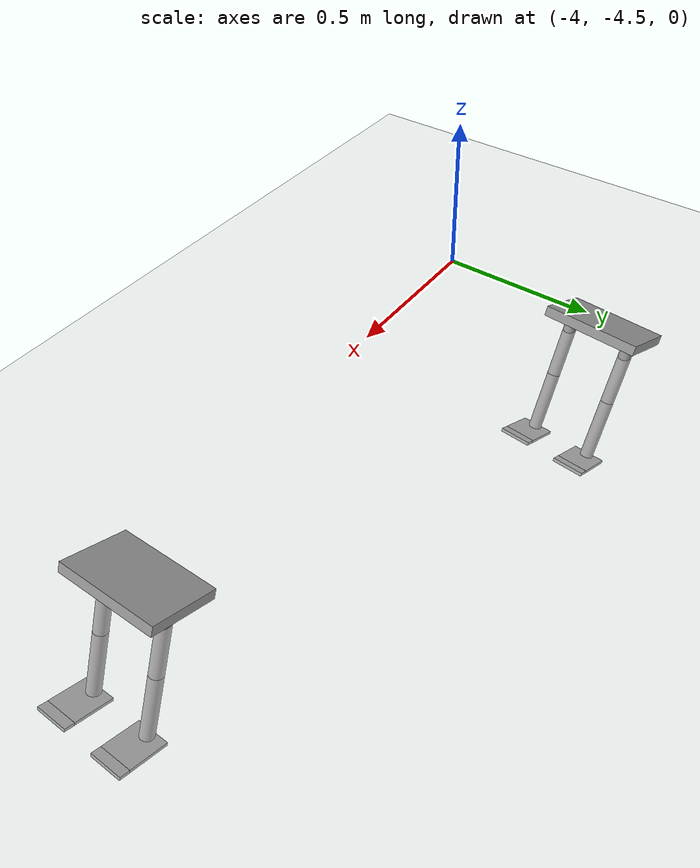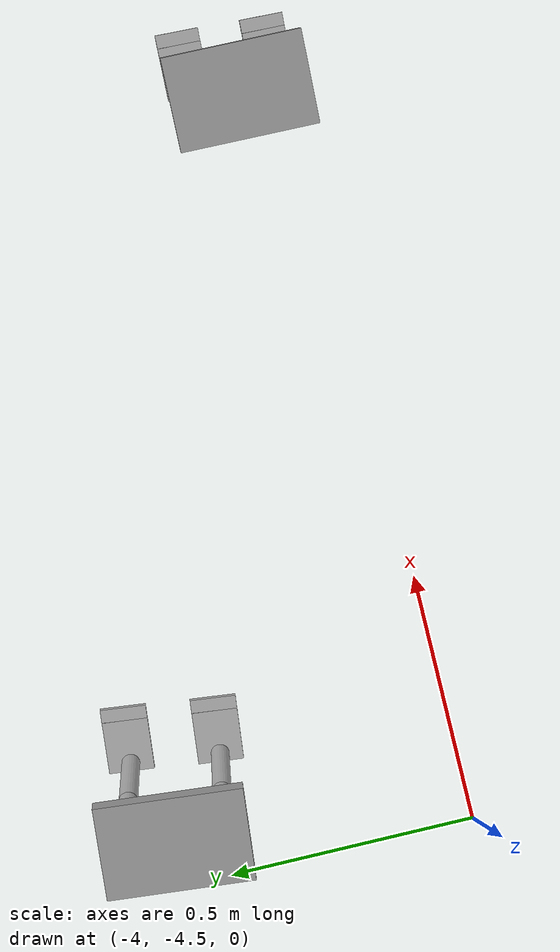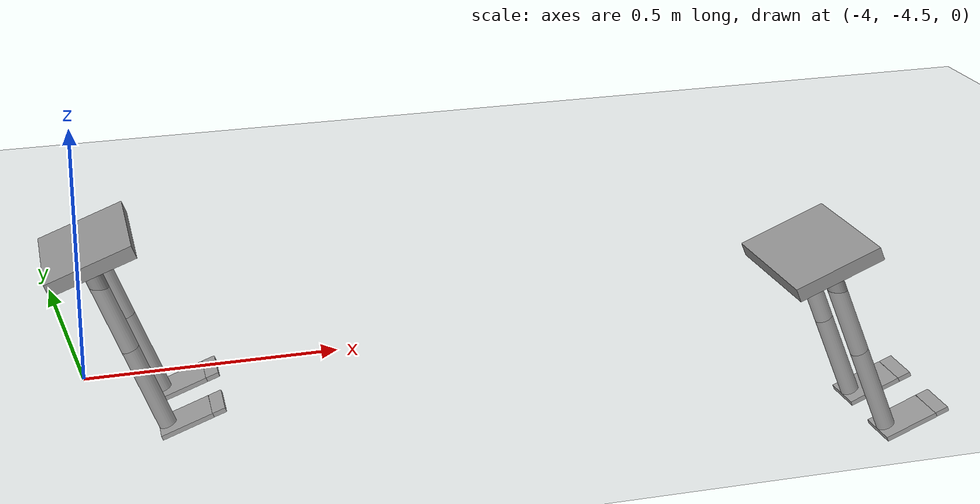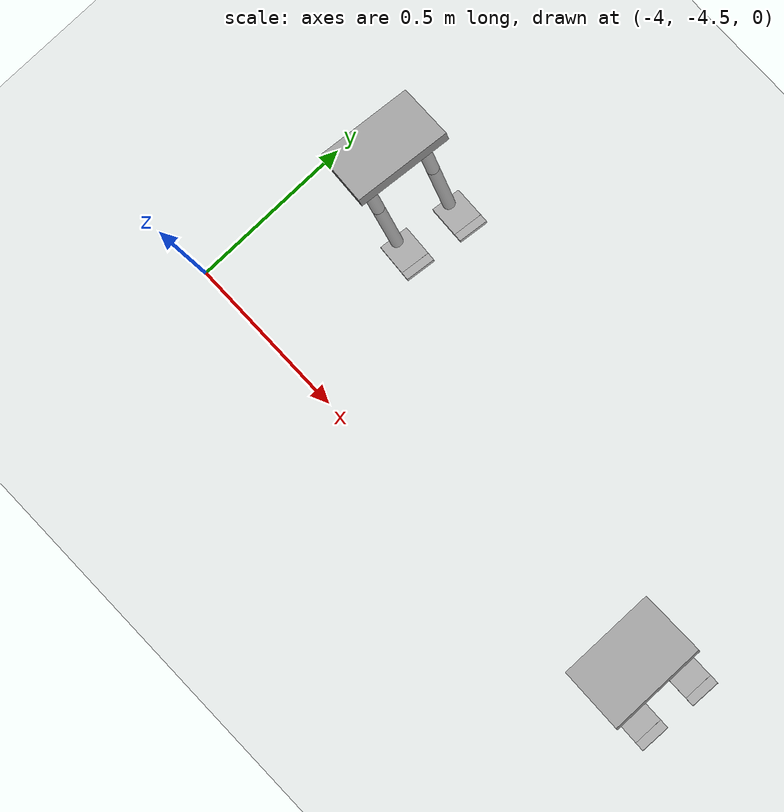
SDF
<sdf version="1.6">
 <world name="default">
  <model name="ground_plane">
   <static>1</static>
   <link name="link">
    <collision name="collision">
     <geometry><plane><normal>0 0 1</normal><size>100 100</size></plane></geometry>
     <surface><friction><ode><mu>100</mu><mu2>50</mu2></ode></friction></surface>
    </collision>
    <visual name="visual">
     <cast_shadows>0</cast_shadows>
     <geometry><plane><normal>0 0 1</normal><size>100 100</size></plane></geometry>
     <material>
      <script><uri>file://media/materials/scripts/gazebo.material</uri><name>Gazebo/Grey</name></script>
     </material>
    </visual>
   </link>
  </model>
  <model name="humanoid">
   <link name="link_0">
    <inertial>
     <mass>1</mass>
     <inertia>
      <ixx>0.166667</ixx>
      <ixy>0</ixy>
      <ixz>0</ixz>
      <iyy>0.166667</iyy>
      <iyz>0</iyz>
      <izz>0.166667</izz>
     </inertia>
    </inertial>
    <pose>0.02879 -0.034222 0.3501 0 -0 0</pose>
    <visual name="visual">
     <geometry><box><size>0.2 0.3 0.03</size></box></geometry>
     <material>
      <lighting>1</lighting>
      <script><uri>file://media/materials/scripts/gazebo.material</uri><name>Gazebo/Grey</name></script>
      <shader type="pixel"><normal_map>__default__</normal_map></shader>
      <ambient>0.3 0.3 0.3 1</ambient>
      <diffuse>0.7 0.7 0.7 1</diffuse>
      <specular>0.01 0.01 0.01 1</specular>
      <emissive>0 0 0 1</emissive>
     </material>
    </visual>
    <collision name="collision">
     <geometry><box><size>0.2 0.3 0.03</size></box></geometry>
     <surface>
      <friction>
       <ode><mu>1</mu><mu2>1</mu2><fdir1>0 0 0</fdir1><slip1>0</slip1><slip2>0</slip2></ode>
       <torsional>
        <coefficient>1</coefficient>
        <patch_radius>0</patch_radius>
        <surface_radius>0</surface_radius>
        <use_patch_radius>1</use_patch_radius>
        <ode><slip>0</slip></ode>
       </torsional>
      </friction>
      <bounce><restitution_coefficient>0</restitution_coefficient><threshold>1e+06</threshold></bounce>
      <contact>
       <collide_without_contact>0</collide_without_contact>
       <collide_without_contact_bitmask>1</collide_without_contact_bitmask>
       <collide_bitmask>1</collide_bitmask>
       <ode>
        <soft_cfm>0</soft_cfm>
        <soft_erp>0.2</soft_erp>
        <kp>1e+13</kp>
        <kd>1</kd>
        <max_vel>0.01</max_vel>
        <min_depth>0</min_depth>
       </ode>
       <bullet>
        <split_impulse>1</split_impulse>
        <split_impulse_penetration_threshold>-0.01</split_impulse_penetration_threshold>
        <soft_cfm>0</soft_cfm>
        <soft_erp>0.2</soft_erp>
        <kp>1e+13</kp>
        <kd>1</kd>
       </bullet>
      </contact>
     </surface>
    </collision>
   </link>
   <model name="full-leg">
    <link name="link_0">
     <inertial>
      <mass>0.0847963</mass>
      <inertia>
       <ixx>0.00010908</ixx>
       <ixy>0</ixy>
       <ixz>0</ixz>
       <iyy>7.137e-05</iyy>
       <iyz>0</iyz>
       <izz>0.00017903</izz>
      </inertia>
     </inertial>
     <pose>0.065943 0.108898 0.091666 0 -0 0</pose>
     <visual name="visual">
      <geometry><box><size>0.1 0.12 0.01</size></box></geometry>
      <material>
       <lighting>1</lighting>
       <script><uri>file://media/materials/scripts/gazebo.material</uri><name>Gazebo/Grey</name></script>
       <shader type="pixel"><normal_map>__default__</normal_map></shader>
       <ambient>0.3 0.3 0.3 1</ambient>
       <diffuse>0.7 0.7 0.7 1</diffuse>
       <specular>0.01 0.01 0.01 1</specular>
       <emissive>0 0 0 1</emissive>
      </material>
     </visual>
     <collision name="collision">
      <geometry><box><size>0.1 0.12 0.01</size></box></geometry>
      <surface>
       <friction>
        <ode><mu>1</mu><mu2>1</mu2><fdir1>0 0 0</fdir1><slip1>0</slip1><slip2>0</slip2></ode>
        <torsional>
         <coefficient>1</coefficient>
         <patch_radius>0</patch_radius>
         <surface_radius>0</surface_radius>
         <use_patch_radius>1</use_patch_radius>
         <ode><slip>0</slip></ode>
        </torsional>
       </friction>
       <bounce><restitution_coefficient>0</restitution_coefficient><threshold>1e+06</threshold></bounce>
       <contact>
        <collide_without_contact>0</collide_without_contact>
        <collide_without_contact_bitmask>1</collide_without_contact_bitmask>
        <collide_bitmask>1</collide_bitmask>
        <ode>
         <soft_cfm>0</soft_cfm>
         <soft_erp>0.2</soft_erp>
         <kp>1e+13</kp>
         <kd>1</kd>
         <max_vel>0.01</max_vel>
         <min_depth>0</min_depth>
        </ode>
        <bullet>
         <split_impulse>1</split_impulse>
         <split_impulse_penetration_threshold>-0.01</split_impulse_penetration_threshold>
         <soft_cfm>0</soft_cfm>
         <soft_erp>0.2</soft_erp>
         <kp>1e+13</kp>
         <kd>1</kd>
        </bullet>
       </contact>
      </surface>
     </collision>
    </link>
    <link name="link_0_clone">
     <inertial>
      <mass>0.0847963</mass>
      <inertia>
       <ixx>0.00010908</ixx>
       <ixy>0</ixy>
       <ixz>0</ixz>
       <iyy>7.137e-05</iyy>
       <iyz>0</iyz>
       <izz>0.00017903</izz>
      </inertia>
     </inertial>
     <pose>0.065943 0.183898 0.091666 0 0 -0.01</pose>
     <visual name="visual">
      <geometry><box><size>0.1 0.03 0.01</size></box></geometry>
      <material>
       <lighting>1</lighting>
       <script><uri>file://media/materials/scripts/gazebo.material</uri><name>Gazebo/Grey</name></script>
       <shader type="pixel"><normal_map>__default__</normal_map></shader>
       <ambient>0.3 0.3 0.3 1</ambient>
       <diffuse>0.7 0.7 0.7 1</diffuse>
       <specular>0.01 0.01 0.01 1</specular>
       <emissive>0 0 0 1</emissive>
      </material>
     </visual>
     <collision name="collision">
      <geometry><box><size>0.1 0.03 0.01</size></box></geometry>
      <surface>
       <friction>
        <ode><mu>1</mu><mu2>1</mu2><fdir1>0 0 0</fdir1><slip1>0</slip1><slip2>0</slip2></ode>
        <torsional>
         <coefficient>1</coefficient>
         <patch_radius>0</patch_radius>
         <surface_radius>0</surface_radius>
         <use_patch_radius>1</use_patch_radius>
         <ode><slip>0</slip></ode>
        </torsional>
       </friction>
       <bounce><restitution_coefficient>0</restitution_coefficient><threshold>1e+06</threshold></bounce>
       <contact>
        <collide_without_contact>0</collide_without_contact>
        <collide_without_contact_bitmask>1</collide_without_contact_bitmask>
        <collide_bitmask>1</collide_bitmask>
        <ode>
         <soft_cfm>0</soft_cfm>
         <soft_erp>0.2</soft_erp>
         <kp>1e+13</kp>
         <kd>1</kd>
         <max_vel>0.01</max_vel>
         <min_depth>0</min_depth>
        </ode>
        <bullet>
         <split_impulse>1</split_impulse>
         <split_impulse_penetration_threshold>-0.01</split_impulse_penetration_threshold>
         <soft_cfm>0</soft_cfm>
         <soft_erp>0.2</soft_erp>
         <kp>1e+13</kp>
         <kd>1</kd>
        </bullet>
       </contact>
      </surface>
     </collision>
    </link>
    <link name="link_1">
     <inertial>
      <mass>1</mass>
      <inertia><ixx>0.145833</ixx><ixy>0</ixy><ixz>0</ixz><iyy>0.145833</iyy><iyz>0</iyz><izz>0.125</izz></inertia>
     </inertial>
     <pose>0.065943 0.068898 0.191666 0 -0 0</pose>
     <visual name="visual">
      <geometry><cylinder><radius>0.02</radius><length>0.2</length></cylinder></geometry>
      <material>
       <lighting>1</lighting>
       <script><uri>file://media/materials/scripts/gazebo.material</uri><name>Gazebo/Grey</name></script>
       <shader type="pixel"><normal_map>__default__</normal_map></shader>
       <ambient>0.3 0.3 0.3 1</ambient>
       <diffuse>0.7 0.7 0.7 1</diffuse>
       <specular>0.01 0.01 0.01 1</specular>
       <emissive>0 0 0 1</emissive>
      </material>
     </visual>
     <collision name="collision">
      <geometry><cylinder><radius>0.02</radius><length>0.2</length></cylinder></geometry>
      <surface>
       <friction>
        <ode><mu>1</mu><mu2>1</mu2><fdir1>0 0 0</fdir1><slip1>0</slip1><slip2>0</slip2></ode>
        <torsional>
         <coefficient>1</coefficient>
         <patch_radius>0</patch_radius>
         <surface_radius>0</surface_radius>
         <use_patch_radius>1</use_patch_radius>
         <ode><slip>0</slip></ode>
        </torsional>
       </friction>
       <bounce><restitution_coefficient>0</restitution_coefficient><threshold>1e+06</threshold></bounce>
       <contact>
        <collide_without_contact>0</collide_without_contact>
        <collide_without_contact_bitmask>1</collide_without_contact_bitmask>
        <collide_bitmask>1</collide_bitmask>
        <ode>
         <soft_cfm>0</soft_cfm>
         <soft_erp>0.2</soft_erp>
         <kp>1e+13</kp>
         <kd>1</kd>
         <max_vel>0.01</max_vel>
         <min_depth>0</min_depth>
        </ode>
        <bullet>
         <split_impulse>1</split_impulse>
         <split_impulse_penetration_threshold>-0.01</split_impulse_penetration_threshold>
         <soft_cfm>0</soft_cfm>
         <soft_erp>0.2</soft_erp>
         <kp>1e+13</kp>
         <kd>1</kd>
        </bullet>
       </contact>
      </surface>
     </collision>
    </link>
    <link name="link_1_clone">
     <inertial>
      <mass>1</mass>
      <inertia><ixx>0.145833</ixx><ixy>0</ixy><ixz>0</ixz><iyy>0.145833</iyy><iyz>0</iyz><izz>0.125</izz></inertia>
     </inertial>
     <pose>0.065943 0.068898 0.391666 0 -0 0</pose>
     <visual name="visual">
      <geometry><cylinder><radius>0.02</radius><length>0.2</length></cylinder></geometry>
      <material>
       <lighting>1</lighting>
       <script><uri>file://media/materials/scripts/gazebo.material</uri><name>Gazebo/Grey</name></script>
       <shader type="pixel"><normal_map>__default__</normal_map></shader>
       <ambient>0.3 0.3 0.3 1</ambient>
       <diffuse>0.7 0.7 0.7 1</diffuse>
       <specular>0.01 0.01 0.01 1</specular>
       <emissive>0 0 0 1</emissive>
      </material>
     </visual>
     <collision name="collision">
      <geometry><cylinder><radius>0.02</radius><length>0.2</length></cylinder></geometry>
      <surface>
       <friction>
        <ode><mu>1</mu><mu2>1</mu2><fdir1>0 0 0</fdir1><slip1>0</slip1><slip2>0</slip2></ode>
        <torsional>
         <coefficient>1</coefficient>
         <patch_radius>0</patch_radius>
         <surface_radius>0</surface_radius>
         <use_patch_radius>1</use_patch_radius>
         <ode><slip>0</slip></ode>
        </torsional>
       </friction>
       <bounce><restitution_coefficient>0</restitution_coefficient><threshold>1e+06</threshold></bounce>
       <contact>
        <collide_without_contact>0</collide_without_contact>
        <collide_without_contact_bitmask>1</collide_without_contact_bitmask>
        <collide_bitmask>1</collide_bitmask>
        <ode>
         <soft_cfm>0</soft_cfm>
         <soft_erp>0.2</soft_erp>
         <kp>1e+13</kp>
         <kd>1</kd>
         <max_vel>0.01</max_vel>
         <min_depth>0</min_depth>
        </ode>
        <bullet>
         <split_impulse>1</split_impulse>
         <split_impulse_penetration_threshold>-0.01</split_impulse_penetration_threshold>
         <soft_cfm>0</soft_cfm>
         <soft_erp>0.2</soft_erp>
         <kp>1e+13</kp>
         <kd>1</kd>
        </bullet>
       </contact>
      </surface>
     </collision>
    </link>
    <joint name="link_0_JOINT_0" type="revolute">
     <parent>link_0</parent>
     <child>link_0_clone</child>
     <pose>0 -0.015 0 0 -0 0</pose>
     <axis>
      <xyz>1 0 0</xyz>
      <limit>
       <lower>-1.79769e+308</lower>
       <upper>1.79769e+308</upper>
       <effort>-1</effort>
       <velocity>-1</velocity>
      </limit>
      <dynamics>
       <spring_reference>0</spring_reference>
       <spring_stiffness>0</spring_stiffness>
       <damping>0</damping>
      </dynamics>
      <use_parent_model_frame>0</use_parent_model_frame>
     </axis>
     <physics>
      <ode><limit><cfm>0</cfm><erp>0.2</erp></limit><suspension><cfm>0</cfm><erp>0.2</erp></suspension></ode>
     </physics>
    </joint>
    <joint name="link_0_JOINT_2" type="revolute">
     <parent>link_0</parent>
     <child>link_1</child>
     <pose>0 0 -0.1 0 -0 0</pose>
     <axis>
      <xyz>1 0 0</xyz>
      <limit>
       <lower>-1.79769e+308</lower>
       <upper>1.79769e+308</upper>
       <effort>-1</effort>
       <velocity>-1</velocity>
      </limit>
      <dynamics>
       <spring_reference>0</spring_reference>
       <spring_stiffness>0</spring_stiffness>
       <damping>0</damping>
      </dynamics>
      <use_parent_model_frame>0</use_parent_model_frame>
     </axis>
     <physics>
      <ode><limit><cfm>0</cfm><erp>0.2</erp></limit><suspension><cfm>0</cfm><erp>0.2</erp></suspension></ode>
     </physics>
    </joint>
    <joint name="link_1_JOINT_3" type="revolute">
     <parent>link_1</parent>
     <child>link_1_clone</child>
     <pose>0 0 -0.1 0 -0 0</pose>
     <axis>
      <xyz>1 0 0</xyz>
      <limit>
       <lower>-1.79769e+308</lower>
       <upper>1.79769e+308</upper>
       <effort>-1</effort>
       <velocity>-1</velocity>
      </limit>
      <dynamics>
       <spring_reference>0</spring_reference>
       <spring_stiffness>0</spring_stiffness>
       <damping>0</damping>
      </dynamics>
      <use_parent_model_frame>0</use_parent_model_frame>
     </axis>
     <physics>
      <ode><limit><cfm>0</cfm><erp>0.2</erp></limit><suspension><cfm>0</cfm><erp>0.2</erp></suspension></ode>
     </physics>
    </joint>
    <static>0</static>
    <pose>-0.042531 -0.066167 -0.154901 0 0 -1.57989</pose>
   </model>
   <model name="full-leg_clone">
    <link name="link_0">
     <inertial>
      <mass>0.0847963</mass>
      <inertia>
       <ixx>0.00010908</ixx>
       <ixy>0</ixy>
       <ixz>0</ixz>
       <iyy>7.137e-05</iyy>
       <iyz>0</iyz>
       <izz>0.00017903</izz>
      </inertia>
     </inertial>
     <pose>0.065943 0.108898 0.091666 0 -0 0</pose>
     <visual name="visual">
      <geometry><box><size>0.1 0.12 0.01</size></box></geometry>
      <material>
       <lighting>1</lighting>
       <script><uri>file://media/materials/scripts/gazebo.material</uri><name>Gazebo/Grey</name></script>
       <shader type="pixel"><normal_map>__default__</normal_map></shader>
       <ambient>0.3 0.3 0.3 1</ambient>
       <diffuse>0.7 0.7 0.7 1</diffuse>
       <specular>0.01 0.01 0.01 1</specular>
       <emissive>0 0 0 1</emissive>
      </material>
     </visual>
     <collision name="collision">
      <geometry><box><size>0.1 0.12 0.01</size></box></geometry>
      <surface>
       <friction>
        <ode><mu>1</mu><mu2>1</mu2><fdir1>0 0 0</fdir1><slip1>0</slip1><slip2>0</slip2></ode>
        <torsional>
         <coefficient>1</coefficient>
         <patch_radius>0</patch_radius>
         <surface_radius>0</surface_radius>
         <use_patch_radius>1</use_patch_radius>
         <ode><slip>0</slip></ode>
        </torsional>
       </friction>
       <bounce><restitution_coefficient>0</restitution_coefficient><threshold>1e+06</threshold></bounce>
       <contact>
        <collide_without_contact>0</collide_without_contact>
        <collide_without_contact_bitmask>1</collide_without_contact_bitmask>
        <collide_bitmask>1</collide_bitmask>
        <ode>
         <soft_cfm>0</soft_cfm>
         <soft_erp>0.2</soft_erp>
         <kp>1e+13</kp>
         <kd>1</kd>
         <max_vel>0.01</max_vel>
         <min_depth>0</min_depth>
        </ode>
        <bullet>
         <split_impulse>1</split_impulse>
         <split_impulse_penetration_threshold>-0.01</split_impulse_penetration_threshold>
         <soft_cfm>0</soft_cfm>
         <soft_erp>0.2</soft_erp>
         <kp>1e+13</kp>
         <kd>1</kd>
        </bullet>
       </contact>
      </surface>
     </collision>
    </link>
    <link name="link_0_clone">
     <inertial>
      <mass>0.0847963</mass>
      <inertia>
       <ixx>0.00010908</ixx>
       <ixy>0</ixy>
       <ixz>0</ixz>
       <iyy>7.137e-05</iyy>
       <iyz>0</iyz>
       <izz>0.00017903</izz>
      </inertia>
     </inertial>
     <pose>0.065943 0.183898 0.091666 0 0 -0.01</pose>
     <visual name="visual">
      <geometry><box><size>0.1 0.03 0.01</size></box></geometry>
      <material>
       <lighting>1</lighting>
       <script><uri>file://media/materials/scripts/gazebo.material</uri><name>Gazebo/Grey</name></script>
       <shader type="pixel"><normal_map>__default__</normal_map></shader>
       <ambient>0.3 0.3 0.3 1</ambient>
       <diffuse>0.7 0.7 0.7 1</diffuse>
       <specular>0.01 0.01 0.01 1</specular>
       <emissive>0 0 0 1</emissive>
      </material>
     </visual>
     <collision name="collision">
      <geometry><box><size>0.1 0.03 0.01</size></box></geometry>
      <surface>
       <friction>
        <ode><mu>1</mu><mu2>1</mu2><fdir1>0 0 0</fdir1><slip1>0</slip1><slip2>0</slip2></ode>
        <torsional>
         <coefficient>1</coefficient>
         <patch_radius>0</patch_radius>
         <surface_radius>0</surface_radius>
         <use_patch_radius>1</use_patch_radius>
         <ode><slip>0</slip></ode>
        </torsional>
       </friction>
       <bounce><restitution_coefficient>0</restitution_coefficient><threshold>1e+06</threshold></bounce>
       <contact>
        <collide_without_contact>0</collide_without_contact>
        <collide_without_contact_bitmask>1</collide_without_contact_bitmask>
        <collide_bitmask>1</collide_bitmask>
        <ode>
         <soft_cfm>0</soft_cfm>
         <soft_erp>0.2</soft_erp>
         <kp>1e+13</kp>
         <kd>1</kd>
         <max_vel>0.01</max_vel>
         <min_depth>0</min_depth>
        </ode>
        <bullet>
         <split_impulse>1</split_impulse>
         <split_impulse_penetration_threshold>-0.01</split_impulse_penetration_threshold>
         <soft_cfm>0</soft_cfm>
         <soft_erp>0.2</soft_erp>
         <kp>1e+13</kp>
         <kd>1</kd>
        </bullet>
       </contact>
      </surface>
     </collision>
    </link>
    <link name="link_1">
     <inertial>
      <mass>1</mass>
      <inertia><ixx>0.145833</ixx><ixy>0</ixy><ixz>0</ixz><iyy>0.145833</iyy><iyz>0</iyz><izz>0.125</izz></inertia>
     </inertial>
     <pose>0.065943 0.068898 0.191666 0 -0 0</pose>
     <visual name="visual">
      <geometry><cylinder><radius>0.02</radius><length>0.2</length></cylinder></geometry>
      <material>
       <lighting>1</lighting>
       <script><uri>file://media/materials/scripts/gazebo.material</uri><name>Gazebo/Grey</name></script>
       <shader type="pixel"><normal_map>__default__</normal_map></shader>
       <ambient>0.3 0.3 0.3 1</ambient>
       <diffuse>0.7 0.7 0.7 1</diffuse>
       <specular>0.01 0.01 0.01 1</specular>
       <emissive>0 0 0 1</emissive>
      </material>
     </visual>
     <collision name="collision">
      <geometry><cylinder><radius>0.02</radius><length>0.2</length></cylinder></geometry>
      <surface>
       <friction>
        <ode><mu>1</mu><mu2>1</mu2><fdir1>0 0 0</fdir1><slip1>0</slip1><slip2>0</slip2></ode>
        <torsional>
         <coefficient>1</coefficient>
         <patch_radius>0</patch_radius>
         <surface_radius>0</surface_radius>
         <use_patch_radius>1</use_patch_radius>
         <ode><slip>0</slip></ode>
        </torsional>
       </friction>
       <bounce><restitution_coefficient>0</restitution_coefficient><threshold>1e+06</threshold></bounce>
       <contact>
        <collide_without_contact>0</collide_without_contact>
        <collide_without_contact_bitmask>1</collide_without_contact_bitmask>
        <collide_bitmask>1</collide_bitmask>
        <ode>
         <soft_cfm>0</soft_cfm>
         <soft_erp>0.2</soft_erp>
         <kp>1e+13</kp>
         <kd>1</kd>
         <max_vel>0.01</max_vel>
         <min_depth>0</min_depth>
        </ode>
        <bullet>
         <split_impulse>1</split_impulse>
         <split_impulse_penetration_threshold>-0.01</split_impulse_penetration_threshold>
         <soft_cfm>0</soft_cfm>
         <soft_erp>0.2</soft_erp>
         <kp>1e+13</kp>
         <kd>1</kd>
        </bullet>
       </contact>
      </surface>
     </collision>
    </link>
    <link name="link_1_clone">
     <inertial>
      <mass>1</mass>
      <inertia><ixx>0.145833</ixx><ixy>0</ixy><ixz>0</ixz><iyy>0.145833</iyy><iyz>0</iyz><izz>0.125</izz></inertia>
     </inertial>
     <pose>0.065943 0.068898 0.391666 0 -0 0</pose>
     <visual name="visual">
      <geometry><cylinder><radius>0.02</radius><length>0.2</length></cylinder></geometry>
      <material>
       <lighting>1</lighting>
       <script><uri>file://media/materials/scripts/gazebo.material</uri><name>Gazebo/Grey</name></script>
       <shader type="pixel"><normal_map>__default__</normal_map></shader>
       <ambient>0.3 0.3 0.3 1</ambient>
       <diffuse>0.7 0.7 0.7 1</diffuse>
       <specular>0.01 0.01 0.01 1</specular>
       <emissive>0 0 0 1</emissive>
      </material>
     </visual>
     <collision name="collision">
      <geometry><cylinder><radius>0.02</radius><length>0.2</length></cylinder></geometry>
      <surface>
       <friction>
        <ode><mu>1</mu><mu2>1</mu2><fdir1>0 0 0</fdir1><slip1>0</slip1><slip2>0</slip2></ode>
        <torsional>
         <coefficient>1</coefficient>
         <patch_radius>0</patch_radius>
         <surface_radius>0</surface_radius>
         <use_patch_radius>1</use_patch_radius>
         <ode><slip>0</slip></ode>
        </torsional>
       </friction>
       <bounce><restitution_coefficient>0</restitution_coefficient><threshold>1e+06</threshold></bounce>
       <contact>
        <collide_without_contact>0</collide_without_contact>
        <collide_without_contact_bitmask>1</collide_without_contact_bitmask>
        <collide_bitmask>1</collide_bitmask>
        <ode>
         <soft_cfm>0</soft_cfm>
         <soft_erp>0.2</soft_erp>
         <kp>1e+13</kp>
         <kd>1</kd>
         <max_vel>0.01</max_vel>
         <min_depth>0</min_depth>
        </ode>
        <bullet>
         <split_impulse>1</split_impulse>
         <split_impulse_penetration_threshold>-0.01</split_impulse_penetration_threshold>
         <soft_cfm>0</soft_cfm>
         <soft_erp>0.2</soft_erp>
         <kp>1e+13</kp>
         <kd>1</kd>
        </bullet>
       </contact>
      </surface>
     </collision>
    </link>
    <joint name="link_0_JOINT_0" type="revolute">
     <parent>link_0</parent>
     <child>link_0_clone</child>
     <pose>0 -0.015 0 0 -0 0</pose>
     <axis>
      <xyz>1 0 0</xyz>
      <limit>
       <lower>-1.79769e+308</lower>
       <upper>1.79769e+308</upper>
       <effort>-1</effort>
       <velocity>-1</velocity>
      </limit>
      <dynamics>
       <spring_reference>0</spring_reference>
       <spring_stiffness>0</spring_stiffness>
       <damping>0</damping>
      </dynamics>
      <use_parent_model_frame>0</use_parent_model_frame>
     </axis>
     <physics>
      <ode><limit><cfm>0</cfm><erp>0.2</erp></limit><suspension><cfm>0</cfm><erp>0.2</erp></suspension></ode>
     </physics>
    </joint>
    <joint name="link_0_JOINT_2" type="revolute">
     <parent>link_0</parent>
     <child>link_1</child>
     <pose>0 0 -0.1 0 -0 0</pose>
     <axis>
      <xyz>1 0 0</xyz>
      <limit>
       <lower>-1.79769e+308</lower>
       <upper>1.79769e+308</upper>
       <effort>-1</effort>
       <velocity>-1</velocity>
      </limit>
      <dynamics>
       <spring_reference>0</spring_reference>
       <spring_stiffness>0</spring_stiffness>
       <damping>0</damping>
      </dynamics>
      <use_parent_model_frame>0</use_parent_model_frame>
     </axis>
     <physics>
      <ode><limit><cfm>0</cfm><erp>0.2</erp></limit><suspension><cfm>0</cfm><erp>0.2</erp></suspension></ode>
     </physics>
    </joint>
    <joint name="link_1_JOINT_3" type="revolute">
     <parent>link_1</parent>
     <child>link_1_clone</child>
     <pose>0 0 -0.1 0 -0 0</pose>
     <axis>
      <xyz>1 0 0</xyz>
      <limit>
       <lower>-1.79769e+308</lower>
       <upper>1.79769e+308</upper>
       <effort>-1</effort>
       <velocity>-1</velocity>
      </limit>
      <dynamics>
       <spring_reference>0</spring_reference>
       <spring_stiffness>0</spring_stiffness>
       <damping>0</damping>
      </dynamics>
      <use_parent_model_frame>0</use_parent_model_frame>
     </axis>
     <physics>
      <ode><limit><cfm>0</cfm><erp>0.2</erp></limit><suspension><cfm>0</cfm><erp>0.2</erp></suspension></ode>
     </physics>
    </joint>
    <static>0</static>
    <pose>-0.036586 0.130944 -0.15615 0 0 -1.57989</pose>
   </model>
   <joint name="link_1_clone_JOINT_0" type="revolute">
    <parent>full-leg::link_1_clone</parent>
    <child>link_0</child>
    <pose>0 -0.1 0 0 -0 0</pose>
    <axis>
     <xyz>0 1 0</xyz>
     <limit>
      <lower>-1.79769e+308</lower>
      <upper>1.79769e+308</upper>
      <effort>-1</effort>
      <velocity>-1</velocity>
     </limit>
     <dynamics>
      <spring_reference>0</spring_reference>
      <spring_stiffness>0</spring_stiffness>
      <damping>0</damping>
      <friction>0</friction>
     </dynamics>
     <use_parent_model_frame>0</use_parent_model_frame>
    </axis>
    <physics>
     <ode><limit><cfm>0</cfm><erp>0.2</erp></limit><suspension><cfm>0</cfm><erp>0.2</erp></suspension></ode>
    </physics>
   </joint>
   <joint name="link_1_clone_JOINT_1" type="revolute">
    <parent>full-leg_clone::link_1_clone</parent>
    <child>link_0</child>
    <pose>0 0.1 0 0 -0 0</pose>
    <axis>
     <xyz>0 1 0</xyz>
     <limit>
      <lower>-1.79769e+308</lower>
      <upper>1.79769e+308</upper>
      <effort>-1</effort>
      <velocity>-1</velocity>
     </limit>
     <dynamics>
      <spring_reference>0</spring_reference>
      <spring_stiffness>0</spring_stiffness>
      <damping>0</damping>
     </dynamics>
     <use_parent_model_frame>0</use_parent_model_frame>
    </axis>
    <physics>
     <ode><limit><cfm>0</cfm><erp>0.2</erp></limit><suspension><cfm>0</cfm><erp>0.2</erp></suspension></ode>
    </physics>
   </joint>
   <static>0</static>
   <pose>-3.79956 -3.88348 -0.284333 -0.00291 -0.38066 -0.090111</pose>
  </model>
  <model name="humanoid_2">
   <link name="link_0">
    <inertial>
     <mass>1</mass>
     <inertia>
      <ixx>0.166667</ixx>
      <ixy>0</ixy>
      <ixz>0</ixz>
      <iyy>0.166667</iyy>
      <iyz>0</iyz>
      <izz>0.166667</izz>
     </inertia>
    </inertial>
    <pose>0.02879 -0.034222 0.3501 0 -0 0</pose>
    <visual name="visual">
     <geometry><box><size>0.2 0.3 0.03</size></box></geometry>
     <material>
      <lighting>1</lighting>
      <script><uri>file://media/materials/scripts/gazebo.material</uri><name>Gazebo/Grey</name></script>
      <shader type="pixel"><normal_map>__default__</normal_map></shader>
      <ambient>0.3 0.3 0.3 1</ambient>
      <diffuse>0.7 0.7 0.7 1</diffuse>
      <specular>0.01 0.01 0.01 1</specular>
      <emissive>0 0 0 1</emissive>
     </material>
    </visual>
    <collision name="collision">
     <geometry><box><size>0.2 0.3 0.03</size></box></geometry>
     <surface>
      <friction>
       <ode><mu>1</mu><mu2>1</mu2><fdir1>0 0 0</fdir1><slip1>0</slip1><slip2>0</slip2></ode>
       <torsional>
        <coefficient>1</coefficient>
        <patch_radius>0</patch_radius>
        <surface_radius>0</surface_radius>
        <use_patch_radius>1</use_patch_radius>
        <ode><slip>0</slip></ode>
       </torsional>
      </friction>
      <bounce><restitution_coefficient>0</restitution_coefficient><threshold>1e+06</threshold></bounce>
      <contact>
       <collide_without_contact>0</collide_without_contact>
       <collide_without_contact_bitmask>1</collide_without_contact_bitmask>
       <collide_bitmask>1</collide_bitmask>
       <ode>
        <soft_cfm>0</soft_cfm>
        <soft_erp>0.2</soft_erp>
        <kp>1e+13</kp>
        <kd>1</kd>
        <max_vel>0.01</max_vel>
        <min_depth>0</min_depth>
       </ode>
       <bullet>
        <split_impulse>1</split_impulse>
        <split_impulse_penetration_threshold>-0.01</split_impulse_penetration_threshold>
        <soft_cfm>0</soft_cfm>
        <soft_erp>0.2</soft_erp>
        <kp>1e+13</kp>
        <kd>1</kd>
       </bullet>
      </contact>
     </surface>
    </collision>
   </link>
   <model name="full-leg">
    <link name="link_0">
     <inertial>
      <mass>0.0847963</mass>
      <inertia>
       <ixx>0.00010908</ixx>
       <ixy>0</ixy>
       <ixz>0</ixz>
       <iyy>7.137e-05</iyy>
       <iyz>0</iyz>
       <izz>0.00017903</izz>
      </inertia>
     </inertial>
     <pose>0.065943 0.108898 0.091666 0 -0 0</pose>
     <visual name="visual">
      <geometry><box><size>0.1 0.12 0.01</size></box></geometry>
      <material>
       <lighting>1</lighting>
       <script><uri>file://media/materials/scripts/gazebo.material</uri><name>Gazebo/Grey</name></script>
       <shader type="pixel"><normal_map>__default__</normal_map></shader>
       <ambient>0.3 0.3 0.3 1</ambient>
       <diffuse>0.7 0.7 0.7 1</diffuse>
       <specular>0.01 0.01 0.01 1</specular>
       <emissive>0 0 0 1</emissive>
      </material>
     </visual>
     <collision name="collision">
      <geometry><box><size>0.1 0.12 0.01</size></box></geometry>
      <surface>
       <friction>
        <ode><mu>1</mu><mu2>1</mu2><fdir1>0 0 0</fdir1><slip1>0</slip1><slip2>0</slip2></ode>
        <torsional>
         <coefficient>1</coefficient>
         <patch_radius>0</patch_radius>
         <surface_radius>0</surface_radius>
         <use_patch_radius>1</use_patch_radius>
         <ode><slip>0</slip></ode>
        </torsional>
       </friction>
       <bounce><restitution_coefficient>0</restitution_coefficient><threshold>1e+06</threshold></bounce>
       <contact>
        <collide_without_contact>0</collide_without_contact>
        <collide_without_contact_bitmask>1</collide_without_contact_bitmask>
        <collide_bitmask>1</collide_bitmask>
        <ode>
         <soft_cfm>0</soft_cfm>
         <soft_erp>0.2</soft_erp>
         <kp>1e+13</kp>
         <kd>1</kd>
         <max_vel>0.01</max_vel>
         <min_depth>0</min_depth>
        </ode>
        <bullet>
         <split_impulse>1</split_impulse>
         <split_impulse_penetration_threshold>-0.01</split_impulse_penetration_threshold>
         <soft_cfm>0</soft_cfm>
         <soft_erp>0.2</soft_erp>
         <kp>1e+13</kp>
         <kd>1</kd>
        </bullet>
       </contact>
      </surface>
     </collision>
    </link>
    <link name="link_0_clone">
     <inertial>
      <mass>0.0847963</mass>
      <inertia>
       <ixx>0.00010908</ixx>
       <ixy>0</ixy>
       <ixz>0</ixz>
       <iyy>7.137e-05</iyy>
       <iyz>0</iyz>
       <izz>0.00017903</izz>
      </inertia>
     </inertial>
     <pose>0.065943 0.183898 0.091666 0 0 -0.01</pose>
     <visual name="visual">
      <geometry><box><size>0.1 0.03 0.01</size></box></geometry>
      <material>
       <lighting>1</lighting>
       <script><uri>file://media/materials/scripts/gazebo.material</uri><name>Gazebo/Grey</name></script>
       <shader type="pixel"><normal_map>__default__</normal_map></shader>
       <ambient>0.3 0.3 0.3 1</ambient>
       <diffuse>0.7 0.7 0.7 1</diffuse>
       <specular>0.01 0.01 0.01 1</specular>
       <emissive>0 0 0 1</emissive>
      </material>
     </visual>
     <collision name="collision">
      <geometry><box><size>0.1 0.03 0.01</size></box></geometry>
      <surface>
       <friction>
        <ode><mu>1</mu><mu2>1</mu2><fdir1>0 0 0</fdir1><slip1>0</slip1><slip2>0</slip2></ode>
        <torsional>
         <coefficient>1</coefficient>
         <patch_radius>0</patch_radius>
         <surface_radius>0</surface_radius>
         <use_patch_radius>1</use_patch_radius>
         <ode><slip>0</slip></ode>
        </torsional>
       </friction>
       <bounce><restitution_coefficient>0</restitution_coefficient><threshold>1e+06</threshold></bounce>
       <contact>
        <collide_without_contact>0</collide_without_contact>
        <collide_without_contact_bitmask>1</collide_without_contact_bitmask>
        <collide_bitmask>1</collide_bitmask>
        <ode>
         <soft_cfm>0</soft_cfm>
         <soft_erp>0.2</soft_erp>
         <kp>1e+13</kp>
         <kd>1</kd>
         <max_vel>0.01</max_vel>
         <min_depth>0</min_depth>
        </ode>
        <bullet>
         <split_impulse>1</split_impulse>
         <split_impulse_penetration_threshold>-0.01</split_impulse_penetration_threshold>
         <soft_cfm>0</soft_cfm>
         <soft_erp>0.2</soft_erp>
         <kp>1e+13</kp>
         <kd>1</kd>
        </bullet>
       </contact>
      </surface>
     </collision>
    </link>
    <link name="link_1">
     <inertial>
      <mass>1</mass>
      <inertia><ixx>0.145833</ixx><ixy>0</ixy><ixz>0</ixz><iyy>0.145833</iyy><iyz>0</iyz><izz>0.125</izz></inertia>
     </inertial>
     <pose>0.065943 0.068898 0.191666 0 -0 0</pose>
     <visual name="visual">
      <geometry><cylinder><radius>0.02</radius><length>0.2</length></cylinder></geometry>
      <material>
       <lighting>1</lighting>
       <script><uri>file://media/materials/scripts/gazebo.material</uri><name>Gazebo/Grey</name></script>
       <shader type="pixel"><normal_map>__default__</normal_map></shader>
       <ambient>0.3 0.3 0.3 1</ambient>
       <diffuse>0.7 0.7 0.7 1</diffuse>
       <specular>0.01 0.01 0.01 1</specular>
       <emissive>0 0 0 1</emissive>
      </material>
     </visual>
     <collision name="collision">
      <geometry><cylinder><radius>0.02</radius><length>0.2</length></cylinder></geometry>
      <surface>
       <friction>
        <ode><mu>1</mu><mu2>1</mu2><fdir1>0 0 0</fdir1><slip1>0</slip1><slip2>0</slip2></ode>
        <torsional>
         <coefficient>1</coefficient>
         <patch_radius>0</patch_radius>
         <surface_radius>0</surface_radius>
         <use_patch_radius>1</use_patch_radius>
         <ode><slip>0</slip></ode>
        </torsional>
       </friction>
       <bounce><restitution_coefficient>0</restitution_coefficient><threshold>1e+06</threshold></bounce>
       <contact>
        <collide_without_contact>0</collide_without_contact>
        <collide_without_contact_bitmask>1</collide_without_contact_bitmask>
        <collide_bitmask>1</collide_bitmask>
        <ode>
         <soft_cfm>0</soft_cfm>
         <soft_erp>0.2</soft_erp>
         <kp>1e+13</kp>
         <kd>1</kd>
         <max_vel>0.01</max_vel>
         <min_depth>0</min_depth>
        </ode>
        <bullet>
         <split_impulse>1</split_impulse>
         <split_impulse_penetration_threshold>-0.01</split_impulse_penetration_threshold>
         <soft_cfm>0</soft_cfm>
         <soft_erp>0.2</soft_erp>
         <kp>1e+13</kp>
         <kd>1</kd>
        </bullet>
       </contact>
      </surface>
     </collision>
    </link>
    <link name="link_1_clone">
     <inertial>
      <mass>1</mass>
      <inertia><ixx>0.145833</ixx><ixy>0</ixy><ixz>0</ixz><iyy>0.145833</iyy><iyz>0</iyz><izz>0.125</izz></inertia>
     </inertial>
     <pose>0.065943 0.068898 0.391666 0 -0 0</pose>
     <visual name="visual">
      <geometry><cylinder><radius>0.02</radius><length>0.2</length></cylinder></geometry>
      <material>
       <lighting>1</lighting>
       <script><uri>file://media/materials/scripts/gazebo.material</uri><name>Gazebo/Grey</name></script>
       <shader type="pixel"><normal_map>__default__</normal_map></shader>
       <ambient>0.3 0.3 0.3 1</ambient>
       <diffuse>0.7 0.7 0.7 1</diffuse>
       <specular>0.01 0.01 0.01 1</specular>
       <emissive>0 0 0 1</emissive>
      </material>
     </visual>
     <collision name="collision">
      <geometry><cylinder><radius>0.02</radius><length>0.2</length></cylinder></geometry>
      <surface>
       <friction>
        <ode><mu>1</mu><mu2>1</mu2><fdir1>0 0 0</fdir1><slip1>0</slip1><slip2>0</slip2></ode>
        <torsional>
         <coefficient>1</coefficient>
         <patch_radius>0</patch_radius>
         <surface_radius>0</surface_radius>
         <use_patch_radius>1</use_patch_radius>
         <ode><slip>0</slip></ode>
        </torsional>
       </friction>
       <bounce><restitution_coefficient>0</restitution_coefficient><threshold>1e+06</threshold></bounce>
       <contact>
        <collide_without_contact>0</collide_without_contact>
        <collide_without_contact_bitmask>1</collide_without_contact_bitmask>
        <collide_bitmask>1</collide_bitmask>
        <ode>
         <soft_cfm>0</soft_cfm>
         <soft_erp>0.2</soft_erp>
         <kp>1e+13</kp>
         <kd>1</kd>
         <max_vel>0.01</max_vel>
         <min_depth>0</min_depth>
        </ode>
        <bullet>
         <split_impulse>1</split_impulse>
         <split_impulse_penetration_threshold>-0.01</split_impulse_penetration_threshold>
         <soft_cfm>0</soft_cfm>
         <soft_erp>0.2</soft_erp>
         <kp>1e+13</kp>
         <kd>1</kd>
        </bullet>
       </contact>
      </surface>
     </collision>
    </link>
    <joint name="link_0_JOINT_0" type="revolute">
     <parent>link_0</parent>
     <child>link_0_clone</child>
     <pose>0 -0.015 0 0 -0 0</pose>
     <axis>
      <xyz>1 0 0</xyz>
      <limit>
       <lower>-1.79769e+308</lower>
       <upper>1.79769e+308</upper>
       <effort>-1</effort>
       <velocity>-1</velocity>
      </limit>
      <dynamics>
       <spring_reference>0</spring_reference>
       <spring_stiffness>0</spring_stiffness>
       <damping>0</damping>
      </dynamics>
      <use_parent_model_frame>0</use_parent_model_frame>
     </axis>
     <physics>
      <ode><limit><cfm>0</cfm><erp>0.2</erp></limit><suspension><cfm>0</cfm><erp>0.2</erp></suspension></ode>
     </physics>
    </joint>
    <joint name="link_0_JOINT_2" type="revolute">
     <parent>link_0</parent>
     <child>link_1</child>
     <pose>0 0 -0.1 0 -0 0</pose>
     <axis>
      <xyz>1 0 0</xyz>
      <limit>
       <lower>-1.79769e+308</lower>
       <upper>1.79769e+308</upper>
       <effort>-1</effort>
       <velocity>-1</velocity>
      </limit>
      <dynamics>
       <spring_reference>0</spring_reference>
       <spring_stiffness>0</spring_stiffness>
       <damping>0</damping>
      </dynamics>
      <use_parent_model_frame>0</use_parent_model_frame>
     </axis>
     <physics>
      <ode><limit><cfm>0</cfm><erp>0.2</erp></limit><suspension><cfm>0</cfm><erp>0.2</erp></suspension></ode>
     </physics>
    </joint>
    <joint name="link_1_JOINT_3" type="revolute">
     <parent>link_1</parent>
     <child>link_1_clone</child>
     <pose>0 0 -0.1 0 -0 0</pose>
     <axis>
      <xyz>1 0 0</xyz>
      <limit>
       <lower>-1.79769e+308</lower>
       <upper>1.79769e+308</upper>
       <effort>-1</effort>
       <velocity>-1</velocity>
      </limit>
      <dynamics>
       <spring_reference>0</spring_reference>
       <spring_stiffness>0</spring_stiffness>
       <damping>0</damping>
      </dynamics>
      <use_parent_model_frame>0</use_parent_model_frame>
     </axis>
     <physics>
      <ode><limit><cfm>0</cfm><erp>0.2</erp></limit><suspension><cfm>0</cfm><erp>0.2</erp></suspension></ode>
     </physics>
    </joint>
    <static>0</static>
    <pose>-0.042531 -0.066167 -0.154901 0 0 -1.57989</pose>
   </model>
   <model name="full-leg_clone">
    <link name="link_0">
     <inertial>
      <mass>0.0847963</mass>
      <inertia>
       <ixx>0.00010908</ixx>
       <ixy>0</ixy>
       <ixz>0</ixz>
       <iyy>7.137e-05</iyy>
       <iyz>0</iyz>
       <izz>0.00017903</izz>
      </inertia>
     </inertial>
     <pose>0.065943 0.108898 0.091666 0 -0 0</pose>
     <visual name="visual">
      <geometry><box><size>0.1 0.12 0.01</size></box></geometry>
      <material>
       <lighting>1</lighting>
       <script><uri>file://media/materials/scripts/gazebo.material</uri><name>Gazebo/Grey</name></script>
       <shader type="pixel"><normal_map>__default__</normal_map></shader>
       <ambient>0.3 0.3 0.3 1</ambient>
       <diffuse>0.7 0.7 0.7 1</diffuse>
       <specular>0.01 0.01 0.01 1</specular>
       <emissive>0 0 0 1</emissive>
      </material>
     </visual>
     <collision name="collision">
      <geometry><box><size>0.1 0.12 0.01</size></box></geometry>
      <surface>
       <friction>
        <ode><mu>1</mu><mu2>1</mu2><fdir1>0 0 0</fdir1><slip1>0</slip1><slip2>0</slip2></ode>
        <torsional>
         <coefficient>1</coefficient>
         <patch_radius>0</patch_radius>
         <surface_radius>0</surface_radius>
         <use_patch_radius>1</use_patch_radius>
         <ode><slip>0</slip></ode>
        </torsional>
       </friction>
       <bounce><restitution_coefficient>0</restitution_coefficient><threshold>1e+06</threshold></bounce>
       <contact>
        <collide_without_contact>0</collide_without_contact>
        <collide_without_contact_bitmask>1</collide_without_contact_bitmask>
        <collide_bitmask>1</collide_bitmask>
        <ode>
         <soft_cfm>0</soft_cfm>
         <soft_erp>0.2</soft_erp>
         <kp>1e+13</kp>
         <kd>1</kd>
         <max_vel>0.01</max_vel>
         <min_depth>0</min_depth>
        </ode>
        <bullet>
         <split_impulse>1</split_impulse>
         <split_impulse_penetration_threshold>-0.01</split_impulse_penetration_threshold>
         <soft_cfm>0</soft_cfm>
         <soft_erp>0.2</soft_erp>
         <kp>1e+13</kp>
         <kd>1</kd>
        </bullet>
       </contact>
      </surface>
     </collision>
    </link>
    <link name="link_0_clone">
     <inertial>
      <mass>0.0847963</mass>
      <inertia>
       <ixx>0.00010908</ixx>
       <ixy>0</ixy>
       <ixz>0</ixz>
       <iyy>7.137e-05</iyy>
       <iyz>0</iyz>
       <izz>0.00017903</izz>
      </inertia>
     </inertial>
     <pose>0.065943 0.183898 0.091666 0 0 -0.01</pose>
     <visual name="visual">
      <geometry><box><size>0.1 0.03 0.01</size></box></geometry>
      <material>
       <lighting>1</lighting>
       <script><uri>file://media/materials/scripts/gazebo.material</uri><name>Gazebo/Grey</name></script>
       <shader type="pixel"><normal_map>__default__</normal_map></shader>
       <ambient>0.3 0.3 0.3 1</ambient>
       <diffuse>0.7 0.7 0.7 1</diffuse>
       <specular>0.01 0.01 0.01 1</specular>
       <emissive>0 0 0 1</emissive>
      </material>
     </visual>
     <collision name="collision">
      <geometry><box><size>0.1 0.03 0.01</size></box></geometry>
      <surface>
       <friction>
        <ode><mu>1</mu><mu2>1</mu2><fdir1>0 0 0</fdir1><slip1>0</slip1><slip2>0</slip2></ode>
        <torsional>
         <coefficient>1</coefficient>
         <patch_radius>0</patch_radius>
         <surface_radius>0</surface_radius>
         <use_patch_radius>1</use_patch_radius>
         <ode><slip>0</slip></ode>
        </torsional>
       </friction>
       <bounce><restitution_coefficient>0</restitution_coefficient><threshold>1e+06</threshold></bounce>
       <contact>
        <collide_without_contact>0</collide_without_contact>
        <collide_without_contact_bitmask>1</collide_without_contact_bitmask>
        <collide_bitmask>1</collide_bitmask>
        <ode>
         <soft_cfm>0</soft_cfm>
         <soft_erp>0.2</soft_erp>
         <kp>1e+13</kp>
         <kd>1</kd>
         <max_vel>0.01</max_vel>
         <min_depth>0</min_depth>
        </ode>
        <bullet>
         <split_impulse>1</split_impulse>
         <split_impulse_penetration_threshold>-0.01</split_impulse_penetration_threshold>
         <soft_cfm>0</soft_cfm>
         <soft_erp>0.2</soft_erp>
         <kp>1e+13</kp>
         <kd>1</kd>
        </bullet>
       </contact>
      </surface>
     </collision>
    </link>
    <link name="link_1">
     <inertial>
      <mass>1</mass>
      <inertia><ixx>0.145833</ixx><ixy>0</ixy><ixz>0</ixz><iyy>0.145833</iyy><iyz>0</iyz><izz>0.125</izz></inertia>
     </inertial>
     <pose>0.065943 0.068898 0.191666 0 -0 0</pose>
     <visual name="visual">
      <geometry><cylinder><radius>0.02</radius><length>0.2</length></cylinder></geometry>
      <material>
       <lighting>1</lighting>
       <script><uri>file://media/materials/scripts/gazebo.material</uri><name>Gazebo/Grey</name></script>
       <shader type="pixel"><normal_map>__default__</normal_map></shader>
       <ambient>0.3 0.3 0.3 1</ambient>
       <diffuse>0.7 0.7 0.7 1</diffuse>
       <specular>0.01 0.01 0.01 1</specular>
       <emissive>0 0 0 1</emissive>
      </material>
     </visual>
     <collision name="collision">
      <geometry><cylinder><radius>0.02</radius><length>0.2</length></cylinder></geometry>
      <surface>
       <friction>
        <ode><mu>1</mu><mu2>1</mu2><fdir1>0 0 0</fdir1><slip1>0</slip1><slip2>0</slip2></ode>
        <torsional>
         <coefficient>1</coefficient>
         <patch_radius>0</patch_radius>
         <surface_radius>0</surface_radius>
         <use_patch_radius>1</use_patch_radius>
         <ode><slip>0</slip></ode>
        </torsional>
       </friction>
       <bounce><restitution_coefficient>0</restitution_coefficient><threshold>1e+06</threshold></bounce>
       <contact>
        <collide_without_contact>0</collide_without_contact>
        <collide_without_contact_bitmask>1</collide_without_contact_bitmask>
        <collide_bitmask>1</collide_bitmask>
        <ode>
         <soft_cfm>0</soft_cfm>
         <soft_erp>0.2</soft_erp>
         <kp>1e+13</kp>
         <kd>1</kd>
         <max_vel>0.01</max_vel>
         <min_depth>0</min_depth>
        </ode>
        <bullet>
         <split_impulse>1</split_impulse>
         <split_impulse_penetration_threshold>-0.01</split_impulse_penetration_threshold>
         <soft_cfm>0</soft_cfm>
         <soft_erp>0.2</soft_erp>
         <kp>1e+13</kp>
         <kd>1</kd>
        </bullet>
       </contact>
      </surface>
     </collision>
    </link>
    <link name="link_1_clone">
     <inertial>
      <mass>1</mass>
      <inertia><ixx>0.145833</ixx><ixy>0</ixy><ixz>0</ixz><iyy>0.145833</iyy><iyz>0</iyz><izz>0.125</izz></inertia>
     </inertial>
     <pose>0.065943 0.068898 0.391666 0 -0 0</pose>
     <visual name="visual">
      <geometry><cylinder><radius>0.02</radius><length>0.2</length></cylinder></geometry>
      <material>
       <lighting>1</lighting>
       <script><uri>file://media/materials/scripts/gazebo.material</uri><name>Gazebo/Grey</name></script>
       <shader type="pixel"><normal_map>__default__</normal_map></shader>
       <ambient>0.3 0.3 0.3 1</ambient>
       <diffuse>0.7 0.7 0.7 1</diffuse>
       <specular>0.01 0.01 0.01 1</specular>
       <emissive>0 0 0 1</emissive>
      </material>
     </visual>
     <collision name="collision">
      <geometry><cylinder><radius>0.02</radius><length>0.2</length></cylinder></geometry>
      <surface>
       <friction>
        <ode><mu>1</mu><mu2>1</mu2><fdir1>0 0 0</fdir1><slip1>0</slip1><slip2>0</slip2></ode>
        <torsional>
         <coefficient>1</coefficient>
         <patch_radius>0</patch_radius>
         <surface_radius>0</surface_radius>
         <use_patch_radius>1</use_patch_radius>
         <ode><slip>0</slip></ode>
        </torsional>
       </friction>
       <bounce><restitution_coefficient>0</restitution_coefficient><threshold>1e+06</threshold></bounce>
       <contact>
        <collide_without_contact>0</collide_without_contact>
        <collide_without_contact_bitmask>1</collide_without_contact_bitmask>
        <collide_bitmask>1</collide_bitmask>
        <ode>
         <soft_cfm>0</soft_cfm>
         <soft_erp>0.2</soft_erp>
         <kp>1e+13</kp>
         <kd>1</kd>
         <max_vel>0.01</max_vel>
         <min_depth>0</min_depth>
        </ode>
        <bullet>
         <split_impulse>1</split_impulse>
         <split_impulse_penetration_threshold>-0.01</split_impulse_penetration_threshold>
         <soft_cfm>0</soft_cfm>
         <soft_erp>0.2</soft_erp>
         <kp>1e+13</kp>
         <kd>1</kd>
        </bullet>
       </contact>
      </surface>
     </collision>
    </link>
    <joint name="link_0_JOINT_0" type="revolute">
     <parent>link_0</parent>
     <child>link_0_clone</child>
     <pose>0 -0.015 0 0 -0 0</pose>
     <axis>
      <xyz>1 0 0</xyz>
      <limit>
       <lower>-1.79769e+308</lower>
       <upper>1.79769e+308</upper>
       <effort>-1</effort>
       <velocity>-1</velocity>
      </limit>
      <dynamics>
       <spring_reference>0</spring_reference>
       <spring_stiffness>0</spring_stiffness>
       <damping>0</damping>
      </dynamics>
      <use_parent_model_frame>0</use_parent_model_frame>
     </axis>
     <physics>
      <ode><limit><cfm>0</cfm><erp>0.2</erp></limit><suspension><cfm>0</cfm><erp>0.2</erp></suspension></ode>
     </physics>
    </joint>
    <joint name="link_0_JOINT_2" type="revolute">
     <parent>link_0</parent>
     <child>link_1</child>
     <pose>0 0 -0.1 0 -0 0</pose>
     <axis>
      <xyz>1 0 0</xyz>
      <limit>
       <lower>-1.79769e+308</lower>
       <upper>1.79769e+308</upper>
       <effort>-1</effort>
       <velocity>-1</velocity>
      </limit>
      <dynamics>
       <spring_reference>0</spring_reference>
       <spring_stiffness>0</spring_stiffness>
       <damping>0</damping>
      </dynamics>
      <use_parent_model_frame>0</use_parent_model_frame>
     </axis>
     <physics>
      <ode><limit><cfm>0</cfm><erp>0.2</erp></limit><suspension><cfm>0</cfm><erp>0.2</erp></suspension></ode>
     </physics>
    </joint>
    <joint name="link_1_JOINT_3" type="revolute">
     <parent>link_1</parent>
     <child>link_1_clone</child>
     <pose>0 0 -0.1 0 -0 0</pose>
     <axis>
      <xyz>1 0 0</xyz>
      <limit>
       <lower>-1.79769e+308</lower>
       <upper>1.79769e+308</upper>
       <effort>-1</effort>
       <velocity>-1</velocity>
      </limit>
      <dynamics>
       <spring_reference>0</spring_reference>
       <spring_stiffness>0</spring_stiffness>
       <damping>0</damping>
      </dynamics>
      <use_parent_model_frame>0</use_parent_model_frame>
     </axis>
     <physics>
      <ode><limit><cfm>0</cfm><erp>0.2</erp></limit><suspension><cfm>0</cfm><erp>0.2</erp></suspension></ode>
     </physics>
    </joint>
    <static>0</static>
    <pose>-0.036586 0.130944 -0.15615 0 0 -1.57989</pose>
   </model>
   <joint name="link_1_clone_JOINT_0" type="revolute">
    <parent>full-leg::link_1_clone</parent>
    <child>link_0</child>
    <pose>0 -0.1 0 0 -0 0</pose>
    <axis>
     <xyz>0 1 0</xyz>
     <limit>
      <lower>-1.79769e+308</lower>
      <upper>1.79769e+308</upper>
      <effort>-1</effort>
      <velocity>-1</velocity>
     </limit>
     <dynamics>
      <spring_reference>0</spring_reference>
      <spring_stiffness>0</spring_stiffness>
      <damping>0</damping>
      <friction>0</friction>
     </dynamics>
     <use_parent_model_frame>0</use_parent_model_frame>
    </axis>
    <physics>
     <ode><limit><cfm>0</cfm><erp>0.2</erp></limit><suspension><cfm>0</cfm><erp>0.2</erp></suspension></ode>
    </physics>
   </joint>
   <joint name="link_1_clone_JOINT_1" type="revolute">
    <parent>full-leg_clone::link_1_clone</parent>
    <child>link_0</child>
    <pose>0 0.1 0 0 -0 0</pose>
    <axis>
     <xyz>0 1 0</xyz>
     <limit>
      <lower>-1.79769e+308</lower>
      <upper>1.79769e+308</upper>
      <effort>-1</effort>
      <velocity>-1</velocity>
     </limit>
     <dynamics>
      <spring_reference>0</spring_reference>
      <spring_stiffness>0</spring_stiffness>
      <damping>0</damping>
     </dynamics>
     <use_parent_model_frame>0</use_parent_model_frame>
    </axis>
    <physics>
     <ode><limit><cfm>0</cfm><erp>0.2</erp></limit><suspension><cfm>0</cfm><erp>0.2</erp></suspension></ode>
    </physics>
   </joint>
   <static>0</static>
   <pose>-2.32581 -4.35015 -0.284329 -0.002923 -0.38071 -0.007807</pose>
  </model>
 </world>
</sdf>
